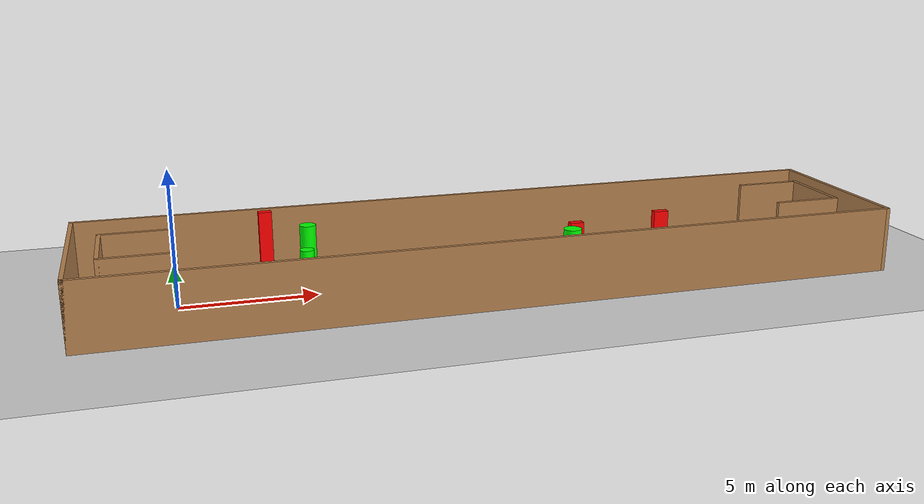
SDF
<sdf version="1.7">
 <world name="default">
  <light name="sun" type="directional">
   <pose>0 0 10 0 -0 0</pose>
   <diffuse>0.8 0.8 0.8 1</diffuse>
   <specular>0.2 0.2 0.2 1</specular>
   <attenuation>
    <range>1000</range>
    <constant>0.9</constant>
    <linear>0.01</linear>
    <quadratic>0.001</quadratic>
   </attenuation>
   <direction>-0.5 0.1 -0.9</direction>
   <spot><inner_angle>0</inner_angle><outer_angle>0</outer_angle><falloff>0</falloff></spot>
  </light>
  <model name="ground_plane">
   <static>1</static>
   <link name="link">
    <collision name="collision">
     <geometry><plane><normal>0 0 1</normal><size>100 100</size></plane></geometry>
     <surface>
      <contact><collide_bitmask>65535</collide_bitmask></contact>
      <friction><ode><mu>100</mu><mu2>50</mu2></ode></friction>
     </surface>
    </collision>
    <visual name="visual">
     <cast_shadows>0</cast_shadows>
     <geometry><plane><normal>0 0 1</normal><size>100 100</size></plane></geometry>
     <material>
      <script><uri>file://media/materials/scripts/gazebo.material</uri><name>Gazebo/Grey</name></script>
     </material>
    </visual>
   </link>
  </model>
  <gravity>0 0 -9.8</gravity>
  <magnetic_field>6e-06 2.3e-05 -4.2e-05</magnetic_field>
  <atmosphere type="adiabatic"/>
  <physics type="ode">
   <max_step_size>0.001</max_step_size>
   <real_time_factor>1</real_time_factor>
   <real_time_update_rate>1000</real_time_update_rate>
  </physics>
  <scene><ambient>0.4 0.4 0.4 1</ambient><background>0.7 0.7 0.7 1</background><shadows>1</shadows></scene>
  <spherical_coordinates>
   <surface_model>EARTH_WGS84</surface_model>
   <latitude_deg>0</latitude_deg>
   <longitude_deg>0</longitude_deg>
   <elevation>0</elevation>
   <heading_deg>0</heading_deg>
  </spherical_coordinates>
  <model name="my_base_walls">
   <link name="Wall_0">
    <collision name="Wall_0_Collision">
     <geometry><box><size>7.15 0.15 2.5</size></box></geometry>
     <pose>0 0 1.25 0 -0 0</pose>
    </collision>
    <visual name="Wall_0_Visual">
     <pose>0 0 1.25 0 -0 0</pose>
     <geometry><box><size>7.15 0.15 2.5</size></box></geometry>
     <material>
      <script><uri>file://media/materials/scripts/gazebo.material</uri><name>Gazebo/Wood</name></script>
      <ambient>1 1 1 1</ambient>
     </material>
     <meta><layer>0</layer></meta>
    </visual>
    <pose>-15 0 0 0 -0 1.5708</pose>
   </link>
   <link name="Wall_10">
    <collision name="Wall_10_Collision">
     <geometry><box><size>2.65 0.15 2.5</size></box></geometry>
     <pose>0 0 1.25 0 -0 0</pose>
    </collision>
    <visual name="Wall_10_Visual">
     <pose>0 0 1.25 0 -0 0</pose>
     <geometry><box><size>2.65 0.15 2.5</size></box></geometry>
     <material>
      <script><uri>file://media/materials/scripts/gazebo.material</uri><name>Gazebo/Wood</name></script>
      <ambient>1 1 1 1</ambient>
     </material>
     <meta><layer>0</layer></meta>
    </visual>
    <pose>-12.75 -1.5 0 0 -0 0</pose>
   </link>
   <link name="Wall_12">
    <collision name="Wall_12_Collision">
     <geometry><box><size>2.65 0.15 2.5</size></box></geometry>
     <pose>0 0 1.25 0 -0 0</pose>
    </collision>
    <visual name="Wall_12_Visual">
     <pose>0 0 1.25 0 -0 0</pose>
     <geometry><box><size>2.65 0.15 2.5</size></box></geometry>
     <material>
      <script><uri>file://media/materials/scripts/gazebo.material</uri><name>Gazebo/Wood</name></script>
      <ambient>1 1 1 1</ambient>
     </material>
     <meta><layer>0</layer></meta>
    </visual>
    <pose>-12.75 1.5 0 0 -0 0</pose>
   </link>
   <link name="Wall_14">
    <collision name="Wall_14_Collision">
     <geometry><box><size>3.15 0.15 2.5</size></box></geometry>
     <pose>0 0 1.25 0 -0 0</pose>
    </collision>
    <visual name="Wall_14_Visual">
     <pose>0 0 1.25 0 -0 0</pose>
     <geometry><box><size>3.15 0.15 2.5</size></box></geometry>
     <material>
      <script><uri>file://media/materials/scripts/gazebo.material</uri><name>Gazebo/Wood</name></script>
      <ambient>1 1 1 1</ambient>
     </material>
     <meta><layer>0</layer></meta>
    </visual>
    <pose>14 0 0 0 -0 -1.5708</pose>
   </link>
   <link name="Wall_15">
    <collision name="Wall_15_Collision">
     <geometry><box><size>2.65 0.15 2.5</size></box></geometry>
     <pose>0 0 1.25 0 -0 0</pose>
    </collision>
    <visual name="Wall_15_Visual">
     <pose>0 0 1.25 0 -0 0</pose>
     <geometry><box><size>2.65 0.15 2.5</size></box></geometry>
     <material>
      <script><uri>file://media/materials/scripts/gazebo.material</uri><name>Gazebo/Wood</name></script>
      <ambient>1 1 1 1</ambient>
     </material>
     <meta><layer>0</layer></meta>
    </visual>
    <pose>12.75 -1.5 0 0 -0 3.14159</pose>
   </link>
   <link name="Wall_17">
    <collision name="Wall_17_Collision">
     <geometry><box><size>2.65 0.15 2.5</size></box></geometry>
     <pose>0 0 1.25 0 -0 0</pose>
    </collision>
    <visual name="Wall_17_Visual">
     <pose>0 0 1.25 0 -0 0</pose>
     <geometry><box><size>2.65 0.15 2.5</size></box></geometry>
     <material>
      <script><uri>file://media/materials/scripts/gazebo.material</uri><name>Gazebo/Wood</name></script>
      <ambient>1 1 1 1</ambient>
     </material>
     <meta><layer>0</layer></meta>
    </visual>
    <pose>12.75 1.5 0 0 -0 3.14159</pose>
   </link>
   <link name="Wall_2">
    <collision name="Wall_2_Collision">
     <geometry><box><size>30.15 0.15 2.5</size></box></geometry>
     <pose>0 0 1.25 0 -0 0</pose>
    </collision>
    <visual name="Wall_2_Visual">
     <pose>0 0 1.25 0 -0 0</pose>
     <geometry><box><size>30.15 0.15 2.5</size></box></geometry>
     <material>
      <script><uri>file://media/materials/scripts/gazebo.material</uri><name>Gazebo/Wood</name></script>
      <ambient>1 1 1 1</ambient>
     </material>
     <meta><layer>0</layer></meta>
    </visual>
    <pose>-0 -3.5 0 0 -0 0</pose>
   </link>
   <link name="Wall_4">
    <collision name="Wall_4_Collision">
     <geometry><box><size>30.15 0.15 2.5</size></box></geometry>
     <pose>0 0 1.25 0 -0 0</pose>
    </collision>
    <visual name="Wall_4_Visual">
     <pose>0 0 1.25 0 -0 0</pose>
     <geometry><box><size>30.15 0.15 2.5</size></box></geometry>
     <material>
      <script><uri>file://media/materials/scripts/gazebo.material</uri><name>Gazebo/Wood</name></script>
      <ambient>1 1 1 1</ambient>
     </material>
     <meta><layer>0</layer></meta>
    </visual>
    <pose>-0 3.5 0 0 -0 0</pose>
   </link>
   <link name="Wall_6">
    <collision name="Wall_6_Collision">
     <geometry><box><size>7.15 0.15 2.5</size></box></geometry>
     <pose>0 0 1.25 0 -0 0</pose>
    </collision>
    <visual name="Wall_6_Visual">
     <pose>0 0 1.25 0 -0 0</pose>
     <geometry><box><size>7.15 0.15 2.5</size></box></geometry>
     <material>
      <script><uri>file://media/materials/scripts/gazebo.material</uri><name>Gazebo/Wood</name></script>
      <ambient>1 1 1 1</ambient>
     </material>
     <meta><layer>0</layer></meta>
    </visual>
    <pose>15 0 0 0 -0 -1.5708</pose>
   </link>
   <link name="Wall_9">
    <collision name="Wall_9_Collision">
     <geometry><box><size>3.15 0.15 2.5</size></box></geometry>
     <pose>0 0 1.25 0 -0 0</pose>
    </collision>
    <visual name="Wall_9_Visual">
     <pose>0 0 1.25 0 -0 0</pose>
     <geometry><box><size>3.15 0.15 2.5</size></box></geometry>
     <material>
      <script><uri>file://media/materials/scripts/gazebo.material</uri><name>Gazebo/Wood</name></script>
      <ambient>1 1 1 1</ambient>
     </material>
     <meta><layer>0</layer></meta>
    </visual>
    <pose>-14 0 0 0 -0 -1.5708</pose>
   </link>
   <static>1</static>
   <pose>11.5 0 0 0 -0 0</pose>
  </model>
  <model name="cylinder1">
   <static>1</static>
   <link name="link">
    <inertial>
     <mass>1</mass>
     <inertia><ixx>0.5</ixx><ixy>0</ixy><ixz>0</ixz><iyy>0.5</iyy><iyz>0</iyz><izz>1</izz></inertia>
    </inertial>
    <collision name="collision">
     <geometry><cylinder><radius>0.32742229737669276</radius><length>2.5</length></cylinder></geometry>
    </collision>
    <visual name="visual">
     <geometry><cylinder><radius>0.32742229737669276</radius><length>2.5</length></cylinder></geometry>
     <material>
      <ambient>0 1 0 1</ambient>
      <diffuse>0 1 0 1</diffuse>
      <specular>0.1 0.1 0.1 1</specular>
      <emissive>0 0 0 0</emissive>
     </material>
    </visual>
   </link>
   <pose>13.859120161247894 -2.657898951462937 1.25 0 0 0</pose>
  </model>
  <model name="cylinder2">
   <static>1</static>
   <link name="link">
    <inertial>
     <mass>1</mass>
     <inertia><ixx>0.5</ixx><ixy>0</ixy><ixz>0</ixz><iyy>0.5</iyy><iyz>0</iyz><izz>1</izz></inertia>
    </inertial>
    <collision name="collision">
     <geometry><cylinder><radius>0.2985658528180443</radius><length>2.5</length></cylinder></geometry>
    </collision>
    <visual name="visual">
     <geometry><cylinder><radius>0.2985658528180443</radius><length>2.5</length></cylinder></geometry>
     <material>
      <ambient>0 1 0 1</ambient>
      <diffuse>0 1 0 1</diffuse>
      <specular>0.1 0.1 0.1 1</specular>
      <emissive>0 0 0 0</emissive>
     </material>
    </visual>
   </link>
   <pose>4.777137363185647 0.6466859198535548 1.25 0 0 0</pose>
  </model>
  <model name="cylinder3">
   <static>1</static>
   <link name="link">
    <inertial>
     <mass>1</mass>
     <inertia><ixx>0.5</ixx><ixy>0</ixy><ixz>0</ixz><iyy>0.5</iyy><iyz>0</iyz><izz>1</izz></inertia>
    </inertial>
    <collision name="collision">
     <geometry><cylinder><radius>0.2424494680371213</radius><length>2.5</length></cylinder></geometry>
    </collision>
    <visual name="visual">
     <geometry><cylinder><radius>0.2424494680371213</radius><length>2.5</length></cylinder></geometry>
     <material>
      <ambient>0 1 0 1</ambient>
      <diffuse>0 1 0 1</diffuse>
      <specular>0.1 0.1 0.1 1</specular>
      <emissive>0 0 0 0</emissive>
     </material>
    </visual>
   </link>
   <pose>4.309817073516868 -2.462517299157164 1.25 0 0 0</pose>
  </model>
  <model name="box1">
   <static>1</static>
   <link name="link">
    <inertial>
     <mass>1</mass>
     <inertia><ixx>0.083</ixx><ixy>0</ixy><ixz>0</ixz><iyy>0.083</iyy><iyz>0</iyz><izz>0.083</izz></inertia>
    </inertial>
    <collision name="collision">
     <geometry><box><size>0.49608943175466536 0.30998123683341083 2.5</size></box></geometry>
    </collision>
    <visual name="visual">
     <geometry><box><size>0.49608943175466536 0.30998123683341083 2.5</size></box></geometry>
     <material>
      <ambient>1 0 0 1</ambient>
      <diffuse>1 0 0 1</diffuse>
      <specular>0.1 0.1 0.1 1</specular>
      <emissive>0 0 0 0</emissive>
     </material>
    </visual>
    <sensor name="my_contact" type="contact">
     <contact><collision>box_collision</collision><topic>__default_topic__</topic></contact>
    </sensor>
   </link>
   <pose>3.477956036342606 2.985482494262717 1.25 0 0 0</pose>
  </model>
  <model name="box2">
   <static>1</static>
   <link name="link">
    <inertial>
     <mass>1</mass>
     <inertia><ixx>0.083</ixx><ixy>0</ixy><ixz>0</ixz><iyy>0.083</iyy><iyz>0</iyz><izz>0.083</izz></inertia>
    </inertial>
    <collision name="collision">
     <geometry><box><size>0.5041773916449255 0.2843679558436314 2.5</size></box></geometry>
    </collision>
    <visual name="visual">
     <geometry><box><size>0.5041773916449255 0.2843679558436314 2.5</size></box></geometry>
     <material>
      <ambient>1 0 0 1</ambient>
      <diffuse>1 0 0 1</diffuse>
      <specular>0.1 0.1 0.1 1</specular>
      <emissive>0 0 0 0</emissive>
     </material>
    </visual>
    <sensor name="my_contact" type="contact">
     <contact><collision>box_collision</collision><topic>__default_topic__</topic></contact>
    </sensor>
   </link>
   <pose>14.29022117866159 -1.874108170326338 1.25 0 0 0</pose>
  </model>
  <model name="box3">
   <static>1</static>
   <link name="link">
    <inertial>
     <mass>1</mass>
     <inertia><ixx>0.083</ixx><ixy>0</ixy><ixz>0</ixz><iyy>0.083</iyy><iyz>0</iyz><izz>0.083</izz></inertia>
    </inertial>
    <collision name="collision">
     <geometry><box><size>0.5676571036244231 0.27065097016805784 2.5</size></box></geometry>
    </collision>
    <visual name="visual">
     <geometry><box><size>0.5676571036244231 0.27065097016805784 2.5</size></box></geometry>
     <material>
      <ambient>1 0 0 1</ambient>
      <diffuse>1 0 0 1</diffuse>
      <specular>0.1 0.1 0.1 1</specular>
      <emissive>0 0 0 0</emissive>
     </material>
    </visual>
    <sensor name="my_contact" type="contact">
     <contact><collision>box_collision</collision><topic>__default_topic__</topic></contact>
    </sensor>
   </link>
   <pose>17.94795710039702 -1.2800486454133275 1.25 0 0 0</pose>
  </model>
 </world>
</sdf>
